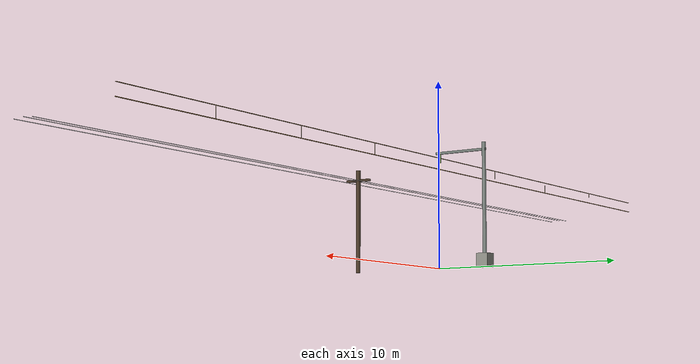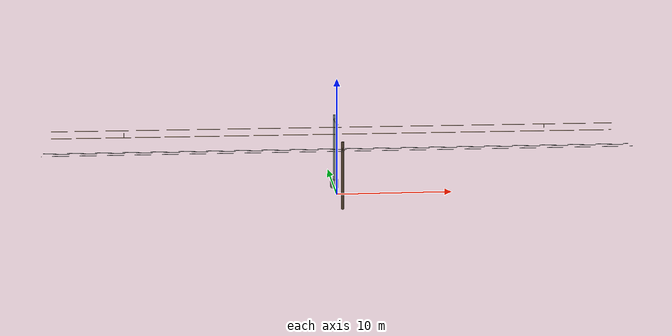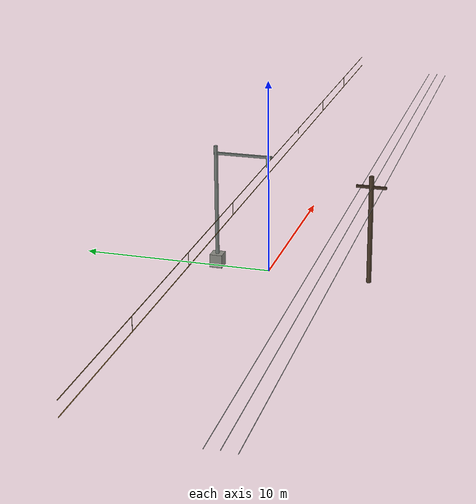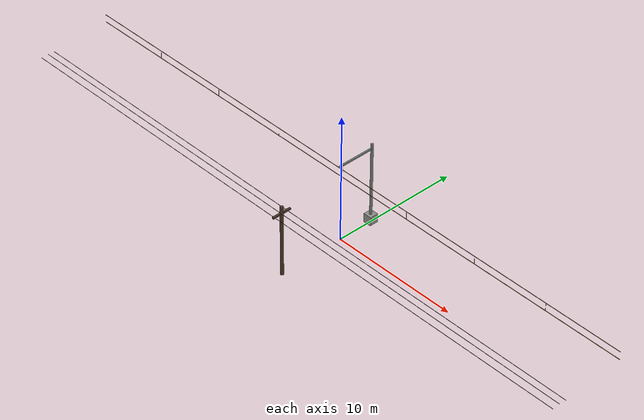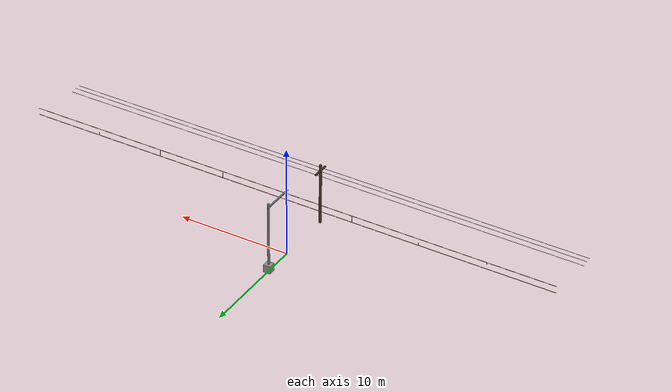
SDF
<?xml version="1.0"?>
<sdf version="1.9">
  <model name="catenary_48m">
    <static>true</static>
    <link name="overhead_lines">
      <visual name="mast"><pose>0 2.75 3.25 0 0 0</pose><geometry><cylinder><radius>0.10</radius><length>6.5</length></cylinder></geometry><material><ambient>0.28 0.30 0.29 1</ambient><diffuse>0.48 0.51 0.49 1</diffuse></material></visual>
      <visual name="mast_base"><pose>0 2.75 0.35 0 0 0</pose><geometry><box><size>0.65 0.65 0.70</size></box></geometry><material><ambient>0.35 0.35 0.34 1</ambient><diffuse>0.55 0.55 0.52 1</diffuse></material></visual>
      <visual name="crossarm"><pose>0 1.35 6.12 0 0 0</pose><geometry><box><size>0.12 3.0 0.12</size></box></geometry><material><ambient>0.25 0.27 0.26 1</ambient><diffuse>0.45 0.48 0.46 1</diffuse></material></visual>
      <visual name="insulator"><pose>0 0.05 5.85 0 0 0</pose><geometry><cylinder><radius>0.07</radius><length>0.48</length></cylinder></geometry><material><ambient>0.18 0.26 0.17 1</ambient><diffuse>0.33 0.48 0.31 1</diffuse></material></visual>

      <visual name="contact_wire"><pose>0 0 5.28 0 1.570796 0</pose><geometry><cylinder><radius>0.018</radius><length>48</length></cylinder></geometry><material><ambient>0.30 0.22 0.12 1</ambient><diffuse>0.55 0.40 0.20 1</diffuse></material></visual>
      <visual name="messenger_wire"><pose>0 0 5.88 0 1.570796 0</pose><geometry><cylinder><radius>0.016</radius><length>48</length></cylinder></geometry><material><ambient>0.25 0.20 0.13 1</ambient><diffuse>0.48 0.36 0.20 1</diffuse></material></visual>
      <visual name="dropper_m18"><pose>-18 0 5.58 0 0 0</pose><geometry><cylinder><radius>0.010</radius><length>0.60</length></cylinder></geometry><material><diffuse>0.40 0.31 0.18 1</diffuse></material></visual>
      <visual name="dropper_m12"><pose>-12 0 5.58 0 0 0</pose><geometry><cylinder><radius>0.010</radius><length>0.60</length></cylinder></geometry><material><diffuse>0.40 0.31 0.18 1</diffuse></material></visual>
      <visual name="dropper_m06"><pose>-6 0 5.58 0 0 0</pose><geometry><cylinder><radius>0.010</radius><length>0.60</length></cylinder></geometry><material><diffuse>0.40 0.31 0.18 1</diffuse></material></visual>
      <visual name="dropper_000"><pose>0 0 5.58 0 0 0</pose><geometry><cylinder><radius>0.010</radius><length>0.60</length></cylinder></geometry><material><diffuse>0.40 0.31 0.18 1</diffuse></material></visual>
      <visual name="dropper_p06"><pose>6 0 5.58 0 0 0</pose><geometry><cylinder><radius>0.010</radius><length>0.60</length></cylinder></geometry><material><diffuse>0.40 0.31 0.18 1</diffuse></material></visual>
      <visual name="dropper_p12"><pose>12 0 5.58 0 0 0</pose><geometry><cylinder><radius>0.010</radius><length>0.60</length></cylinder></geometry><material><diffuse>0.40 0.31 0.18 1</diffuse></material></visual>
      <visual name="dropper_p18"><pose>18 0 5.58 0 0 0</pose><geometry><cylinder><radius>0.010</radius><length>0.60</length></cylinder></geometry><material><diffuse>0.40 0.31 0.18 1</diffuse></material></visual>

      <visual name="utility_pole"><pose>0 -5.2 2.8 0 0 0</pose><geometry><cylinder><radius>0.12</radius><length>5.6</length></cylinder></geometry><material><ambient>0.18 0.14 0.10 1</ambient><diffuse>0.30 0.23 0.16 1</diffuse></material></visual>
      <visual name="utility_arm"><pose>0 -5.2 5.05 0 0 0</pose><geometry><box><size>0.15 1.5 0.12</size></box></geometry><material><diffuse>0.28 0.21 0.15 1</diffuse></material></visual>
      <visual name="utility_wire_1"><pose>0 -4.65 4.95 0 1.570796 0</pose><geometry><cylinder><radius>0.012</radius><length>48</length></cylinder></geometry><material><diffuse>0.08 0.08 0.08 1</diffuse></material></visual>
      <visual name="utility_wire_2"><pose>0 -5.20 5.00 0 1.570796 0</pose><geometry><cylinder><radius>0.012</radius><length>48</length></cylinder></geometry><material><diffuse>0.08 0.08 0.08 1</diffuse></material></visual>
      <visual name="utility_wire_3"><pose>0 -5.75 4.95 0 1.570796 0</pose><geometry><cylinder><radius>0.012</radius><length>48</length></cylinder></geometry><material><diffuse>0.08 0.08 0.08 1</diffuse></material></visual>
    </link>
  </model>
</sdf>
